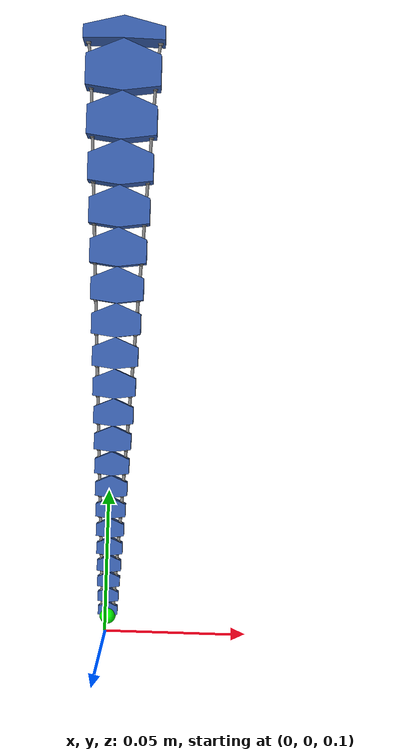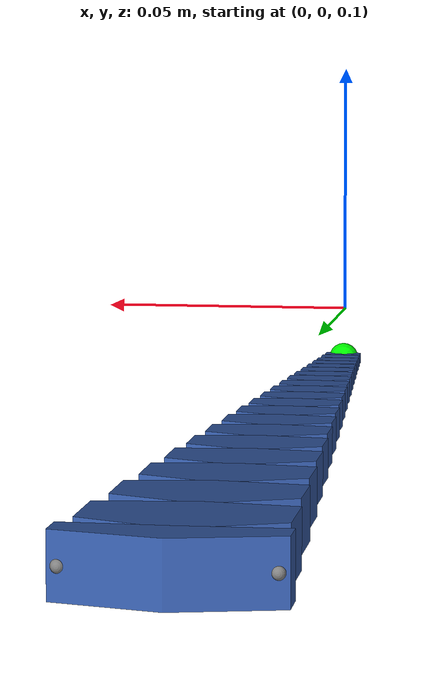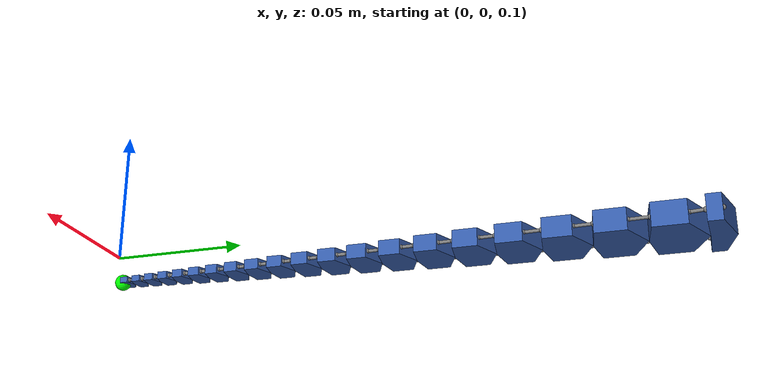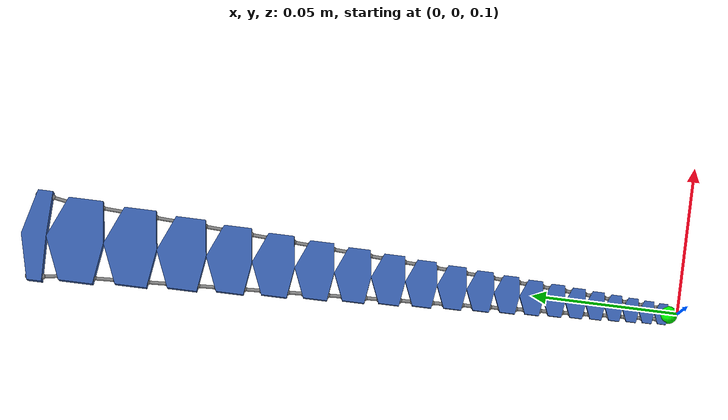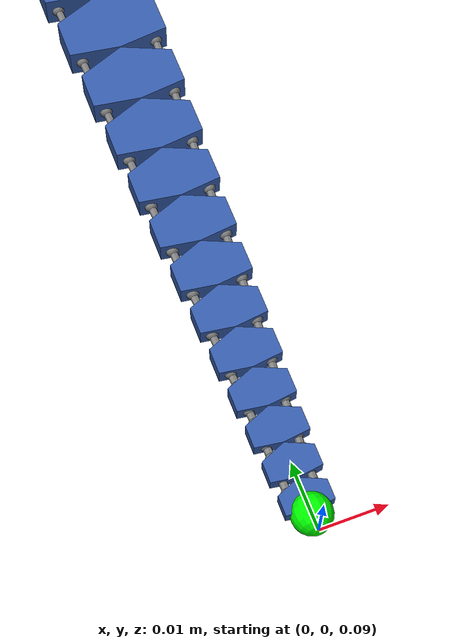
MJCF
<?xml version="1.0" ?>
<mujoco model="SpiRob_RobotOnly">
  <compiler angle="radian" inertiafromgeom="true" autolimits="true"/>

  <option timestep="0.0001" gravity="0.0 0.0 -9.81" integrator="Euler"/>

  <visual>
    <quality shadowsize="4096"/>
    <map znear="0.005" zfar="20"/>
    <scale connect="0"/>
  </visual>

  <default>

    <geom density="1200.0" margin="0" rgba="0.2 0.35 0.65 1.0" friction="0.5 0.1 0.011" solref="0.01 1" solimp="0.9 0.95 0.023" contype="1" conaffinity="1"/>
    <site size="0.001"/>
    <joint damping="0.01" stiffness="0.2" limited="true"/>

    <default class="visual">
        <geom type="mesh" contype="0" conaffinity="0" group="1" density="0"/>
    </default>

    <default class="cable_pos">
      <position ctrllimited="true" ctrlrange="0.14 0.29" kp="2500" kv="20" forcelimited="true" forcerange="-1000 0"/>
    </default>

    <default class="egg_mat">
      <geom density="300" friction="1.2 0.05 0.005" rgba="0.97 0.93 0.80 1.0" solref="0.01 1" solimp="0.9 0.95 0.001" contype="1" conaffinity="1"/>
    </default>

    <default class="bucket_mat">
      <geom density="800" friction="0.5 0.01 0.001" rgba="0.85 0.25 0.15 1.0" contype="1" conaffinity="1"/>
    </default>

  </default>

  <asset>
    <mesh name="link_001" file="meshes/link_001.stl" />
    <mesh name="link_002" file="meshes/link_002.stl" />
    <mesh name="link_003" file="meshes/link_003.stl" />
    <mesh name="link_004" file="meshes/link_004.stl" />
    <mesh name="link_005" file="meshes/link_005.stl" />
    <mesh name="link_006" file="meshes/link_006.stl" />
    <mesh name="link_007" file="meshes/link_007.stl" />
    <mesh name="link_008" file="meshes/link_008.stl" />
    <mesh name="link_009" file="meshes/link_009.stl" />
    <mesh name="link_010" file="meshes/link_010.stl" />
    <mesh name="link_011" file="meshes/link_011.stl" />
    <mesh name="link_012" file="meshes/link_012.stl" />
    <mesh name="link_013" file="meshes/link_013.stl" />
    <mesh name="link_014" file="meshes/link_014.stl" />
    <mesh name="link_015" file="meshes/link_015.stl" />
    <mesh name="link_016" file="meshes/link_016.stl" />
    <mesh name="link_017" file="meshes/link_017.stl" />
    <mesh name="link_018" file="meshes/link_018.stl" />
    <mesh name="link_019" file="meshes/link_019.stl" />
    <mesh name="link_020" file="meshes/link_020.stl" />
    <mesh name="link_021" file="meshes/link_021.stl" />
  </asset>

  <worldbody>
    <body name="robot_base" pos="0.0 0.0 0.09" euler="-1.5708 0 0">

      <body name="link_001" pos="0.0 0.0 0.22628" quat="0.0 0.0 -1.0 0.0">
        <joint name="j_001" type="hinge" axis="0 1 0" range="-0.001 0.001" damping="500" stiffness="5000"/>
        <geom name="gmesh_001" class="visual" mesh="link_001" group="1"/>
        <geom name="gcol_001" type="capsule" mesh="link_001" group="4" fitscale="1.0"/>
        <site name="c0_001_s1" pos="-0.014043787134233146 0.0 0.003887071611887226"/>
        <site name="c0_001_s2" pos="-0.013762963380968076 0.0 0.008989865749906121"/>
        <site name="c1_001_s1" pos="0.014043787134233132 -1.7198678961845392e-18 0.0038870716118872286"/>
        <site name="c1_001_s2" pos="0.013762963380968062 -1.6854769051284778e-18 0.008989865749906125"/>

        <body name="link_002" pos="-9.62964972193618e-35 0.0 0.008584200393390806" quat="0.9999999999999989 0.0 6.464931505853048e-17 0.0">
          <joint name="j_002" type="hinge" axis="0 1 0" range="-0.5235987755982988 0.5235987755982988" damping="0.009151416593531596" stiffness="0.18302833187063192" />
          <geom name="gmesh_002" class="visual" mesh="link_002" group="1" />
          <geom name="gcol_002" type="capsule" mesh="link_002" group="4" fitscale="1.0"/>
          <site name="c0_002_s1" pos="-0.012813076370858354 0.0 0.0060753376579252534" />
          <site name="c0_002_s2" pos="-0.012165259019073867 0.0 0.017846701535654565" />
          <site name="c1_002_s1" pos="0.012813076370858337 -1.5691492964802256e-18 0.006075337657925259" />
          <site name="c1_002_s2" pos="0.01216525901907385 -1.4898145518507268e-18 0.017846701535654572" />

          <body name="link_003" pos="0.0 0.0 0.019802434449997464" quat="0.9999999999999989 0.0 -1.310123454892192e-16 0.0">
            <joint name="j_003" type="hinge" axis="0 1 0" range="-0.5235987755982988 0.5235987755982988" damping="0.008374842566836545" stiffness="0.1674968513367309" />
            <geom name="gmesh_003" class="visual" mesh="link_003" group="1" />
            <geom name="gcol_003" type="capsule" mesh="link_003" group="4" fitscale="1.0"/>
            <site name="c0_003_s1" pos="-0.011797748755937759 0.0 0.005644371041508834" />
            <site name="c0_003_s2" pos="-0.0111958856651136 0.0 0.016580708926176885" />
            <site name="c1_003_s1" pos="0.011797748755937735 -1.4448075251103829e-18 0.005644371041508832" />
            <site name="c1_003_s2" pos="0.011195885665113576 -1.371100554340109e-18 0.016580708926176885" />

            <body name="link_004" pos="0.0 0.0 0.018397707889558357" quat="0.9999999999999989 0.0 -2.838774573256556e-16 0.0">
              <joint name="j_004" type="hinge" axis="0 1 0" range="-0.5235987755982988 0.5235987755982988" damping="0.007664167323436269" stiffness="0.15328334646872538" />
              <geom name="gmesh_004" class="visual" mesh="link_004" group="1" />
              <geom name="gcol_004" type="capsule" mesh="link_004" group="4" fitscale="1.0"/>
              <site name="c0_004_s1" pos="-0.010854445501043577 0.0 0.0052439759315539925" />
              <site name="c0_004_s2" pos="-0.010295276810827758 0.0 0.015404522115493542" />
              <site name="c1_004_s1" pos="0.010854445501043563 -1.3292861939372396e-18 0.005243975931553977" />
              <site name="c1_004_s2" pos="0.010295276810827744 -1.2608077792716175e-18 0.015404522115493528" />

              <body name="link_005" pos="0.0 0.0 0.017092628507075464" quat="0.9999999999999989 0.0 3.3380155433229234e-16 0.0">
                <joint name="j_005" type="hinge" axis="0 1 0" range="-0.5235987755982988 0.5235987755982988" damping="0.00701379880192973" stiffness="0.1402759760385946" />
                <geom name="gmesh_005" class="visual" mesh="link_005" group="1" />
                <geom name="gcol_005" type="capsule" mesh="link_005" group="4" fitscale="1.0"/>
                <site name="c0_005_s1" pos="-0.009978057409537241 0.0 0.004871983675149487" />
                <site name="c0_005_s2" pos="-0.009458554504500285 0.0 0.01431177054390545" />
                <site name="c1_005_s1" pos="0.009978057409537241 -1.2219596068298313e-18 0.004871983675149489" />
                <site name="c1_005_s2" pos="0.009458554504500285 -1.1583388498497053e-18 0.01431177054390545" />

                <body name="link_006" pos="0.0 0.0 0.01588012762430599" quat="0.9999999999999989 0.0 6.27031182745677e-20 0.0">
                  <joint name="j_006" type="hinge" axis="0 1 0" range="-0.5235987755982988 0.5235987755982988" damping="0.006418619473967176" stiffness="0.1283723894793435" />
                  <geom name="gmesh_006" class="visual" mesh="link_006" group="1" />
                  <geom name="gcol_006" type="capsule" mesh="link_006" group="4" fitscale="1.0"/>
                  <site name="c0_006_s1" pos="-0.009163837716189213 0.0 0.004526379457254508" />
                  <site name="c0_006_s2" pos="-0.008681186821988264 0.0 0.01329653556051505" />
                  <site name="c1_006_s1" pos="0.009163837716189213 -1.122246452703691e-18 0.00452637945725451" />
                  <site name="c1_006_s2" pos="0.008681186821988264 -1.0631387654348112e-18 0.01329653556051505" />

                  <body name="link_007" pos="0.0 0.0 0.014753637994288443" quat="0.9999999999999989 0.0 -5.672128456715344e-17 0.0">
                    <joint name="j_007" type="hinge" axis="0 1 0" range="-0.5235987755982988 0.5235987755982988" damping="0.005873946076162826" stiffness="0.11747892152325652" />
                    <geom name="gmesh_007" class="visual" mesh="link_007" group="1" />
                    <geom name="gcol_007" type="capsule" mesh="link_007" group="4" fitscale="1.0"/>
                    <site name="c0_007_s1" pos="-0.008407376377358998 0.0 0.004205291387891803" />
                    <site name="c0_007_s2" pos="-0.007958963320541919 0.0 0.012353318366142216" />
                    <site name="c1_007_s1" pos="0.008407376377358994 -1.0296066569759764e-18 0.004205291387891801" />
                    <site name="c1_007_s2" pos="0.007958963320541915 -9.746918955032848e-19 0.012353318366142216" />

                    <body name="link_008" pos="0.0 0.0 0.013707058231279406" quat="0.9999999999999989 0.0 9.365505275997314e-17 0.0">
                      <joint name="j_008" type="hinge" axis="0 1 0" range="-0.5235987755982988 0.5235987755982988" damping="0.005375492759090629" stiffness="0.10750985518181258" />
                      <geom name="gmesh_008" class="visual" mesh="link_008" group="1" />
                      <geom name="gcol_008" type="capsule" mesh="link_008" group="4" fitscale="1.0"/>
                      <site name="c0_008_s1" pos="-0.007704576184954142 0.0 0.003906980363463291" />
                      <site name="c0_008_s2" pos="-0.007287972233858338 0.0 0.011477010230276556" />
                      <site name="c1_008_s1" pos="0.007704576184954142 -9.435384563691016e-19 0.0039069803634632925" />
                      <site name="c1_008_s2" pos="0.007287972233858338 -8.9251918684694e-19 0.01147701023027656" />

                      <body name="link_009" pos="0.0 0.0 0.012734719763926719" quat="0.9999999999999989 0.0 4.1170684145278175e-17 0.0">
                        <joint name="j_009" type="hinge" axis="0 1 0" range="-0.5235987755982988 0.5235987755982988" damping="0.004919337363395092" stiffness="0.09838674726790185" />
                        <geom name="gmesh_009" class="visual" mesh="link_009" group="1" />
                        <geom name="gcol_009" type="capsule" mesh="link_009" group="4" fitscale="1.0"/>
                        <site name="c0_009_s1" pos="-0.007051630574795008 0.0 0.003629830647274136" />
                        <site name="c0_009_s2" pos="-0.006664579284851341 0.0 0.010662864820750751" />
                        <site name="c1_009_s1" pos="0.007051630574795005 -8.635756812192315e-19 0.0036298306472741394" />
                        <site name="c1_009_s2" pos="0.006664579284851337 -8.161755688856948e-19 0.010662864820750755" />

                        <body name="link_010" pos="0.0 0.0 0.011831356132687001" quat="0.9999999999999989 0.0 -2.296614004818095e-16 0.0">
                          <joint name="j_010" type="hinge" axis="0 1 0" range="-0.5235987755982988 0.5235987755982988" damping="0.004501890557655382" stiffness="0.09003781115310765" />
                          <geom name="gmesh_010" class="visual" mesh="link_010" group="1" />
                          <geom name="gcol_010" type="capsule" mesh="link_010" group="4" fitscale="1.0"/>
                          <site name="c0_010_s1" pos="-0.0064450030091888644 0.0 0.003372341118246971" />
                          <site name="c0_010_s2" pos="-0.006085408001381061 0.0 0.009906472496266557" />
                          <site name="c1_010_s1" pos="0.006445003009188854 -7.892852305698194e-19 0.0033723411182469665" />
                          <site name="c1_010_s2" pos="0.00608540800138105 -7.452475430397e-19 0.009906472496266553" />

                          <body name="link_011" pos="0.0 0.0 0.01099207446519479" quat="0.9999999999999989 0.0 1.371885425556931e-16 0.0">
                            <joint name="j_011" type="hinge" axis="0 1 0" range="-0.5235987755982988 0.5235987755982988" damping="0.004119867595159067" stiffness="0.08239735190318134" />
                            <geom name="gmesh_011" class="visual" mesh="link_011" group="1" />
                            <geom name="gcol_011" type="capsule" mesh="link_011" group="4" fitscale="1.0"/>
                            <site name="c0_011_s1" pos="-0.005881407822043716 0.0 0.003133117140426245" />
                            <site name="c0_011_s2" pos="-0.0055473214283280016 0.0 0.009203736422532638" />
                            <site name="c1_011_s1" pos="0.005881407822043713 -7.20264726374604e-19 0.003133117140426245" />
                            <site name="c1_011_s2" pos="0.005547321428327998 -6.793509431043408e-19 0.009203736422532638" />

                            <body name="link_012" pos="-2.407412430484045e-35 0.0 0.010212328975084867" quat="0.9999999999999989 0.0 1.536415507856157e-17 0.0">
                              <joint name="j_012" type="hinge" axis="0 1 0" range="-0.5235987755982988 0.5235987755982988" damping="0.0037702624673491797" stiffness="0.0754052493469836" />
                              <geom name="gmesh_012" class="visual" mesh="link_012" group="1" />
                              <geom name="gcol_012" type="capsule" mesh="link_012" group="4" fitscale="1.0"/>
                              <site name="c0_012_s1" pos="-0.005357792422773514 0.0 0.0029108630092366246" />
                              <site name="c0_012_s2" pos="-0.005047405136958841 0.0 0.008550850382654157" />
                              <site name="c1_012_s1" pos="0.005357792422773511 -6.561403341045524e-19 0.0029108630092366254" />
                              <site name="c1_012_s2" pos="0.005047405136958837 -6.181288544976549e-19 0.008550850382654157" />

                              <body name="link_013" pos="0.0 0.0 0.009487896340730412" quat="0.9999999999999989 0.0 1.4473879206732153e-17 0.0">
                                <joint name="j_013" type="hinge" axis="0 1 0" range="-0.5235987755982988 0.5235987755982988" damping="0.0034503242505668657" stiffness="0.06900648501133731" />
                                <geom name="gmesh_013" class="visual" mesh="link_013" group="1" />
                                <geom name="gcol_013" type="capsule" mesh="link_013" group="4" fitscale="1.0"/>
                                <site name="c0_013_s1" pos="-0.004871320762606051 0.0 0.0027043749335811103" />
                                <site name="c0_013_s2" pos="-0.004582951439557895 0.0 0.007944278161587853" />
                                <site name="c1_013_s1" pos="0.004871320762606046 -5.96564737954554e-19 0.002704374933581111" />
                                <site name="c1_013_s2" pos="0.00458295143955789 -5.612496811102327e-19 0.007944278161587853" />

                                <body name="link_014" pos="0.0 0.0 0.008814852830541259" quat="0.9999999999999989 0.0 -1.1964112076308103e-16 0.0">
                                  <joint name="j_014" type="hinge" axis="0 1 0" range="-0.5235987755982988 0.5235987755982988" damping="0.003157535459970208" stiffness="0.06315070919940417" />
                                  <geom name="gmesh_014" class="visual" mesh="link_014" group="1" />
                                  <geom name="gcol_014" type="capsule" mesh="link_014" group="4" fitscale="1.0"/>
                                  <site name="c0_014_s1" pos="-0.0044193579737424465 0.0 0.0025125345157688836" />
                                  <site name="c0_014_s2" pos="-0.00415144472382633 0.0 0.007380734393003408" />
                                  <site name="c1_014_s1" pos="0.004419357973742441 -5.412152596830016e-19 0.002512534515768882" />
                                  <site name="c1_014_s2" pos="0.004151444723826325 -5.084053492871079e-19 0.007380734393003407" />

                                  <body name="link_015" pos="0.0 0.0 0.008191006826822" quat="0.9999999999999989 0.0 -1.0e-16 0.0">
                                    <joint name="j_015" type="hinge" axis="0 1 0" range="-0.5235987755982988 0.5235987755982988" damping="0.002880" stiffness="0.0576" />
                                    <geom name="gmesh_015" class="visual" mesh="link_015" group="1" />
                                    <geom name="gcol_015" type="capsule" mesh="link_015" group="4" fitscale="1.0"/>
                                    <site name="c0_015_s1" pos="-0.003990 0.0 0.002320" />
                                    <site name="c0_015_s2" pos="-0.003750 0.0 0.006820" />
                                    <site name="c1_015_s1" pos=" 0.003990 0.0 0.002320" />
                                    <site name="c1_015_s2" pos=" 0.003750 0.0 0.006820" />

                                    <body name="link_016" pos="0.0 0.0 0.007613" quat="0.9999999999999989 0.0 0.0 0.0">
                                      <joint name="j_016" type="hinge" axis="0 1 0" range="-0.5235987755982988 0.5235987755982988" damping="0.002630" stiffness="0.0526" />
                                      <geom name="gmesh_016" class="visual" mesh="link_016" group="1" />
                                      <geom name="gcol_016" type="capsule" mesh="link_016" group="4" fitscale="1.0"/>
                                      <site name="c0_016_s1" pos="-0.003580 0.0 0.002120" />
                                      <site name="c0_016_s2" pos="-0.003370 0.0 0.006230" />
                                      <site name="c1_016_s1" pos=" 0.003580 0.0 0.002120" />
                                      <site name="c1_016_s2" pos=" 0.003370 0.0 0.006230" />

                                      <body name="link_017" pos="0.0 0.0 0.007078" quat="0.9999999999999989 0.0 0.0 0.0">
                                        <joint name="j_017" type="hinge" axis="0 1 0" range="-0.5235987755982988 0.5235987755982988" damping="0.002400" stiffness="0.0480" />
                                        <geom name="gmesh_017" class="visual" mesh="link_017" group="1" />
                                        <geom name="gcol_017" type="capsule" mesh="link_017" group="4" fitscale="1.0"/>
                                        <site name="c0_017_s1" pos="-0.003190 0.0 0.001930" />
                                        <site name="c0_017_s2" pos="-0.003010 0.0 0.005670" />
                                        <site name="c1_017_s1" pos=" 0.003190 0.0 0.001930" />
                                        <site name="c1_017_s2" pos=" 0.003010 0.0 0.005670" />

                                        <body name="link_018" pos="0.0 0.0 0.006582" quat="0.9999999999999989 0.0 0.0 0.0">
                                          <joint name="j_018" type="hinge" axis="0 1 0" range="-0.5235987755982988 0.5235987755982988" damping="0.002190" stiffness="0.0438" />
                                          <geom name="gmesh_018" class="visual" mesh="link_018" group="1" />
                                          <geom name="gcol_018" type="capsule" mesh="link_018" group="4" fitscale="1.0"/>
                                          <site name="c0_018_s1" pos="-0.002830 0.0 0.001750" />
                                          <site name="c0_018_s2" pos="-0.002660 0.0 0.005140" />
                                          <site name="c1_018_s1" pos=" 0.002830 0.0 0.001750" />
                                          <site name="c1_018_s2" pos=" 0.002660 0.0 0.005140" />

                                          <body name="link_019" pos="0.0 0.0 0.006122" quat="0.9999999999999989 0.0 0.0 0.0">
                                            <joint name="j_019" type="hinge" axis="0 1 0" range="-0.5235987755982988 0.5235987755982988" damping="0.001995" stiffness="0.0399" />
                                            <geom name="gmesh_019" class="visual" mesh="link_019" group="1" />
                                            <geom name="gcol_019" type="capsule" mesh="link_019" group="4" fitscale="1.0"/>
                                            <site name="c0_019_s1" pos="-0.002495 0.0 0.001580" />
                                            <site name="c0_019_s2" pos="-0.002345 0.0 0.004640" />
                                            <site name="c1_019_s1" pos=" 0.002495 0.0 0.001580" />
                                            <site name="c1_019_s2" pos=" 0.002345 0.0 0.004640" />

                                            <body name="link_020" pos="0.0 0.0 0.005695" quat="0.9999999999999989 0.0 0.0 0.0">
                                              <joint name="j_020" type="hinge" axis="0 1 0" range="-0.5235987755982988 0.5235987755982988" damping="0.001815" stiffness="0.0363" />
                                              <geom name="gmesh_020" class="visual" mesh="link_020" group="1" />
                                              <geom name="gcol_020" type="capsule" mesh="link_020" group="4" fitscale="1.0"/>
                                              <site name="c0_020_s1" pos="-0.002180 0.0 0.001420" />
                                              <site name="c0_020_s2" pos="-0.002050 0.0 0.004170" />
                                              <site name="c1_020_s1" pos=" 0.002180 0.0 0.001420" />
                                              <site name="c1_020_s2" pos=" 0.002050 0.0 0.004170" />

                                              <body name="link_021" pos="0.0 0.0 0.005300" quat="0.9999999999999989 0.0 0.0 0.0">
                                                <joint name="j_021" type="hinge" axis="0 1 0" range="-0.5235987755982988 0.5235987755982988" damping="0.001650" stiffness="0.0330" />
                                                <geom name="gmesh_021" class="visual" mesh="link_021" group="1" />
                                                <geom name="gcol_021" type="capsule" mesh="link_021" group="4" fitscale="1.0"/>
                                                <site name="c0_021_s1" pos="-0.0020366374998512537 0.0 0.001501163441636032" />
                                                <site name="c0_021_s2" pos="-0.0018765674296572562 0.0 0.004409765745968962" />
                                                <site name="c1_021_s1" pos="0.0020366374998512563 -2.494161595216308e-19 0.0015011634416360342" />
                                                <site name="c1_021_s2" pos="0.0018765674296572588 -2.298132296113937e-19 0.004409765745968964" />

                                                <site name="tip_site" type="sphere" size="0.003" rgba="0 1 0 1" pos="0 0 0.005" />

                                                <site name="cs_021_c0" pos="-0.00375660 0.00000000 0.00295546" size="0.001457" rgba="1 0 0 0.3" group="3" />
                                                <site name="cs_021_c1" pos="0.00375660 -0.00000000 0.00295546" size="0.001457" rgba="1 0 0 0.3" group="3" />
                                              </body>
                                              <site name="cs_020_c0" pos="-0.00402053 0.00000000 0.00318112" size="0.001568" rgba="1 0 0 0.3" group="3" />
                                              <site name="cs_020_c1" pos="0.00402053 -0.00000000 0.00318112" size="0.001568" rgba="1 0 0 0.3" group="3" />
                                            </body>
                                            <site name="cs_019_c0" pos="-0.00430460 0.00000000 0.00342401" size="0.001687" rgba="1 0 0 0.3" group="3" />
                                            <site name="cs_019_c1" pos="0.00430460 -0.00000000 0.00342401" size="0.001687" rgba="1 0 0 0.3" group="3" />
                                          </body>
                                          <site name="cs_018_c0" pos="-0.00461036 0.00000000 0.00368545" size="0.001816" rgba="1 0 0 0.3" group="3" />
                                          <site name="cs_018_c1" pos="0.00461036 -0.00000000 0.00368545" size="0.001816" rgba="1 0 0 0.3" group="3" />
                                        </body>
                                        <site name="cs_017_c0" pos="-0.00493948 0.00000000 0.00396684" size="0.001955" rgba="1 0 0 0.3" group="3" />
                                        <site name="cs_017_c1" pos="0.00493948 -0.00000000 0.00396684" size="0.001955" rgba="1 0 0 0.3" group="3" />
                                      </body>
                                      <site name="cs_016_c0" pos="-0.00529372 0.00000000 0.00426973" size="0.002104" rgba="1 0 0 0.3" group="3" />
                                      <site name="cs_016_c1" pos="0.00529372 -0.00000000 0.00426973" size="0.002104" rgba="1 0 0 0.3" group="3" />
                                    </body>
                                    <site name="cs_015_c0" pos="-0.00567500 0.00000000 0.00459573" size="0.002265" rgba="1 0 0 0.3" group="3" />
                                    <site name="cs_015_c1" pos="0.00567500 -0.00000000 0.00459573" size="0.002265" rgba="1 0 0 0.3" group="3" />
                                  </body>
                                  <site name="cs_014_c0" pos="-0.00608540 0.00000000 0.00494663" size="0.002438" rgba="1 0 0 0.3" group="3" />
                                  <site name="cs_014_c1" pos="0.00608540 -0.00000000 0.00494663" size="0.002438" rgba="1 0 0 0.3" group="3" />
                                </body>
                                <site name="cs_013_c0" pos="-0.00652714 0.00000000 0.00532433" size="0.002624" rgba="1 0 0 0.3" group="3" />
                                <site name="cs_013_c1" pos="0.00652714 -0.00000000 0.00532433" size="0.002624" rgba="1 0 0 0.3" group="3" />
                              </body>
                              <site name="cs_012_c0" pos="-0.00700260 0.00000000 0.00573086" size="0.002824" rgba="1 0 0 0.3" group="3" />
                              <site name="cs_012_c1" pos="0.00700260 -0.00000000 0.00573086" size="0.002824" rgba="1 0 0 0.3" group="3" />
                            </body>
                            <site name="cs_011_c0" pos="-0.00751436 0.00000000 0.00616843" size="0.003040" rgba="1 0 0 0.3" group="3" />
                            <site name="cs_011_c1" pos="0.00751436 -0.00000000 0.00616843" size="0.003040" rgba="1 0 0 0.3" group="3" />
                          </body>
                          <site name="cs_010_c0" pos="-0.00806521 0.00000000 0.00663941" size="0.003272" rgba="1 0 0 0.3" group="3" />
                          <site name="cs_010_c1" pos="0.00806521 -0.00000000 0.00663941" size="0.003272" rgba="1 0 0 0.3" group="3" />
                        </body>
                        <site name="cs_009_c0" pos="-0.00865810 0.00000000 0.00714635" size="0.003522" rgba="1 0 0 0.3" group="3" />
                        <site name="cs_009_c1" pos="0.00865810 -0.00000000 0.00714635" size="0.003522" rgba="1 0 0 0.3" group="3" />
                      </body>
                      <site name="cs_008_c0" pos="-0.00929627 0.00000000 0.00769200" size="0.003791" rgba="1 0 0 0.3" group="3" />
                      <site name="cs_008_c1" pos="0.00929627 -0.00000000 0.00769200" size="0.003791" rgba="1 0 0 0.3" group="3" />
                    </body>
                    <site name="cs_007_c0" pos="-0.00998317 0.00000000 0.00827930" size="0.004080" rgba="1 0 0 0.3" group="3" />
                    <site name="cs_007_c1" pos="0.00998317 -0.00000000 0.00827930" size="0.004080" rgba="1 0 0 0.3" group="3" />
                  </body>
                  <site name="cs_006_c0" pos="-0.01072251 0.00000000 0.00891146" size="0.004392" rgba="1 0 0 0.3" group="3" />
                  <site name="cs_006_c1" pos="0.01072251 -0.00000000 0.00891146" size="0.004392" rgba="1 0 0 0.3" group="3" />
                </body>
                <site name="cs_005_c0" pos="-0.01151831 0.00000000 0.00959188" size="0.004727" rgba="1 0 0 0.3" group="3" />
                <site name="cs_005_c1" pos="0.01151831 -0.00000000 0.00959188" size="0.004727" rgba="1 0 0 0.3" group="3" />
              </body>
              <site name="cs_004_c0" pos="-0.01237486 0.00000000 0.01032425" size="0.005088" rgba="1 0 0 0.3" group="3" />
              <site name="cs_004_c1" pos="0.01237486 -0.00000000 0.01032425" size="0.005088" rgba="1 0 0 0.3" group="3" />
            </body>
            <site name="cs_003_c0" pos="-0.01329682 0.00000000 0.01111254" size="0.005476" rgba="1 0 0 0.3" group="3" />
            <site name="cs_003_c1" pos="0.01329682 -0.00000000 0.01111254" size="0.005476" rgba="1 0 0 0.3" group="3" />
          </body>
          <site name="cs_002_c0" pos="-0.01428917 0.00000000 0.01196102" size="0.005895" rgba="1 0 0 0.3" group="3" />
          <site name="cs_002_c1" pos="0.01428917 -0.00000000 0.01196102" size="0.005895" rgba="1 0 0 0.3" group="3" />
        </body>
        <site name="cs_001_c0" pos="-0.01570338 0.00000000 0.00643847" size="0.002555" rgba="1 0 0 0.3" group="3" />
        <site name="cs_001_c1" pos="0.01570338 -0.00000000 0.00643847" size="0.002555" rgba="1 0 0 0.3" group="3" />
      </body>
    </body>
  </worldbody>

  <tendon>

    <spatial name="cable_0" width="0.0006">

      <site site="c0_021_s2"/>
      <site site="c0_021_s1"/>

      <site site="c0_020_s2"/>
      <site site="c0_020_s1"/>

      <site site="c0_019_s2"/>
      <site site="c0_019_s1"/>

      <site site="c0_018_s2"/>
      <site site="c0_018_s1"/>

      <site site="c0_017_s2"/>
      <site site="c0_017_s1"/>

      <site site="c0_016_s2"/>
      <site site="c0_016_s1"/>

      <site site="c0_015_s2"/>
      <site site="c0_015_s1"/>

      <site site="c0_014_s2"/>
      <site site="c0_014_s1"/>

      <site site="c0_013_s2"/>
      <site site="c0_013_s1"/>

      <site site="c0_012_s2"/>
      <site site="c0_012_s1"/>

      <site site="c0_011_s2"/>
      <site site="c0_011_s1"/>

      <site site="c0_010_s2"/>
      <site site="c0_010_s1"/>

      <site site="c0_009_s2"/>
      <site site="c0_009_s1"/>

      <site site="c0_008_s2"/>
      <site site="c0_008_s1"/>

      <site site="c0_007_s2"/>
      <site site="c0_007_s1"/>

      <site site="c0_006_s2"/>
      <site site="c0_006_s1"/>

      <site site="c0_005_s2"/>
      <site site="c0_005_s1"/>

      <site site="c0_004_s2"/>
      <site site="c0_004_s1"/>

      <site site="c0_003_s2"/>
      <site site="c0_003_s1"/>

      <site site="c0_002_s2"/>
      <site site="c0_002_s1"/>

      <site site="c0_001_s2"/>
      <site site="c0_001_s1"/>

    </spatial>

    <spatial name="cable_1" width="0.0006">

      <site site="c1_021_s2"/>
      <site site="c1_021_s1"/>

      <site site="c1_020_s2"/>
      <site site="c1_020_s1"/>

      <site site="c1_019_s2"/>
      <site site="c1_019_s1"/>

      <site site="c1_018_s2"/>
      <site site="c1_018_s1"/>

      <site site="c1_017_s2"/>
      <site site="c1_017_s1"/>

      <site site="c1_016_s2"/>
      <site site="c1_016_s1"/>

      <site site="c1_015_s2"/>
      <site site="c1_015_s1"/>

      <site site="c1_014_s2"/>
      <site site="c1_014_s1"/>

      <site site="c1_013_s2"/>
      <site site="c1_013_s1"/>

      <site site="c1_012_s2"/>
      <site site="c1_012_s1"/>

      <site site="c1_011_s2"/>
      <site site="c1_011_s1"/>

      <site site="c1_010_s2"/>
      <site site="c1_010_s1"/>

      <site site="c1_009_s2"/>
      <site site="c1_009_s1"/>

      <site site="c1_008_s2"/>
      <site site="c1_008_s1"/>

      <site site="c1_007_s2"/>
      <site site="c1_007_s1"/>

      <site site="c1_006_s2"/>
      <site site="c1_006_s1"/>

      <site site="c1_005_s2"/>
      <site site="c1_005_s1"/>

      <site site="c1_004_s2"/>
      <site site="c1_004_s1"/>

      <site site="c1_003_s2"/>
      <site site="c1_003_s1"/>

      <site site="c1_002_s2"/>
      <site site="c1_002_s1"/>

      <site site="c1_001_s2"/>
      <site site="c1_001_s1"/>

    </spatial>

  </tendon>

  <actuator>

    <position class="cable_pos" name="act_c0" tendon="cable_0"/>

    <position class="cable_pos" name="act_c1" tendon="cable_1"/>

  </actuator>

  <sensor>
        <touch name="touch_001_c0" site="cs_001_c0" />
        <touch name="touch_001_c1" site="cs_001_c1" />
        <touch name="touch_002_c0" site="cs_002_c0" />
        <touch name="touch_002_c1" site="cs_002_c1" />
        <touch name="touch_003_c0" site="cs_003_c0" />
        <touch name="touch_003_c1" site="cs_003_c1" />
        <touch name="touch_004_c0" site="cs_004_c0" />
        <touch name="touch_004_c1" site="cs_004_c1" />
        <touch name="touch_005_c0" site="cs_005_c0" />
        <touch name="touch_005_c1" site="cs_005_c1" />
        <touch name="touch_006_c0" site="cs_006_c0" />
        <touch name="touch_006_c1" site="cs_006_c1" />
        <touch name="touch_007_c0" site="cs_007_c0" />
        <touch name="touch_007_c1" site="cs_007_c1" />
        <touch name="touch_008_c0" site="cs_008_c0" />
        <touch name="touch_008_c1" site="cs_008_c1" />
        <touch name="touch_009_c0" site="cs_009_c0" />
        <touch name="touch_009_c1" site="cs_009_c1" />
        <touch name="touch_010_c0" site="cs_010_c0" />
        <touch name="touch_010_c1" site="cs_010_c1" />
        <touch name="touch_011_c0" site="cs_011_c0" />
        <touch name="touch_011_c1" site="cs_011_c1" />
        <touch name="touch_012_c0" site="cs_012_c0" />
        <touch name="touch_012_c1" site="cs_012_c1" />
        <touch name="touch_013_c0" site="cs_013_c0" />
        <touch name="touch_013_c1" site="cs_013_c1" />
        <touch name="touch_014_c0" site="cs_014_c0" />
        <touch name="touch_014_c1" site="cs_014_c1" />
        <touch name="touch_015_c0" site="cs_015_c0" />
        <touch name="touch_015_c1" site="cs_015_c1" />
        <touch name="touch_016_c0" site="cs_016_c0" />
        <touch name="touch_016_c1" site="cs_016_c1" />
        <touch name="touch_017_c0" site="cs_017_c0" />
        <touch name="touch_017_c1" site="cs_017_c1" />
        <touch name="touch_018_c0" site="cs_018_c0" />
        <touch name="touch_018_c1" site="cs_018_c1" />
        <touch name="touch_019_c0" site="cs_019_c0" />
        <touch name="touch_019_c1" site="cs_019_c1" />
        <touch name="touch_020_c0" site="cs_020_c0" />
        <touch name="touch_020_c1" site="cs_020_c1" />
        <touch name="touch_021_c0" site="cs_021_c0" />
        <touch name="touch_021_c1" site="cs_021_c1" />
  </sensor>
</mujoco>
